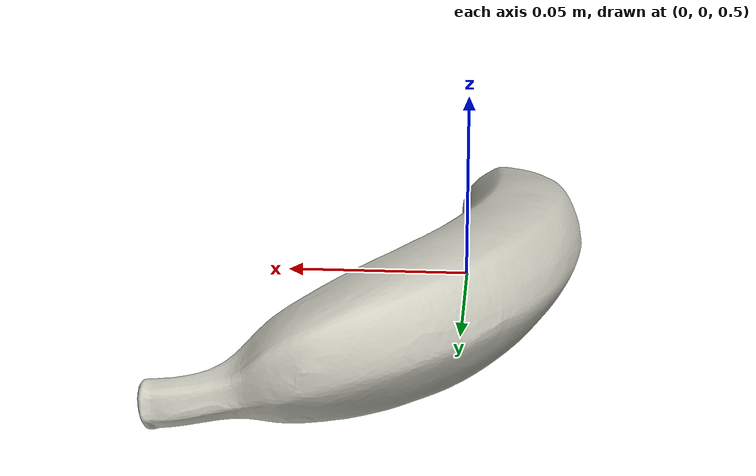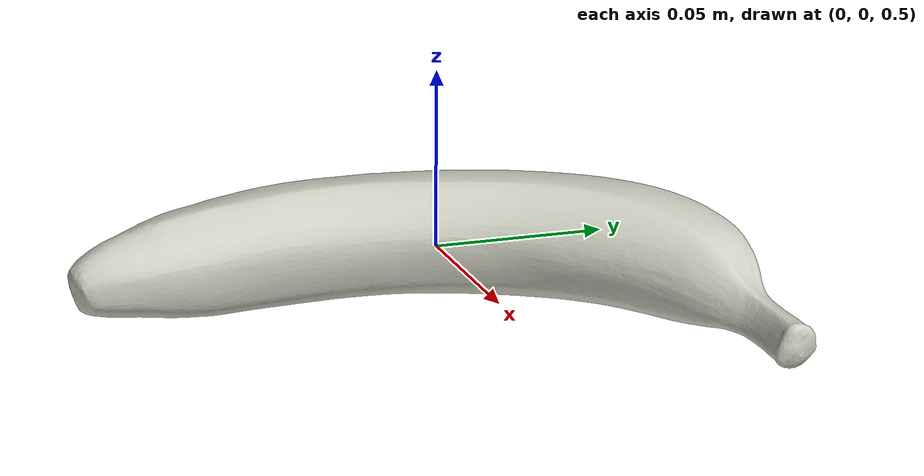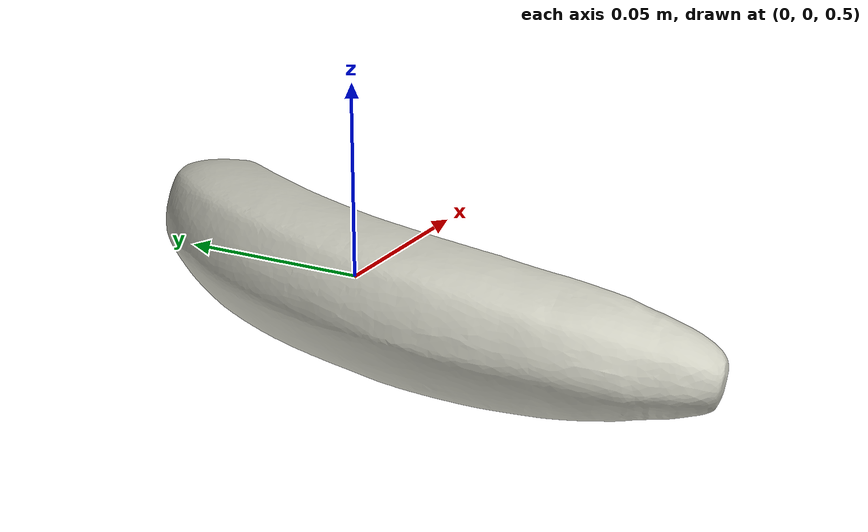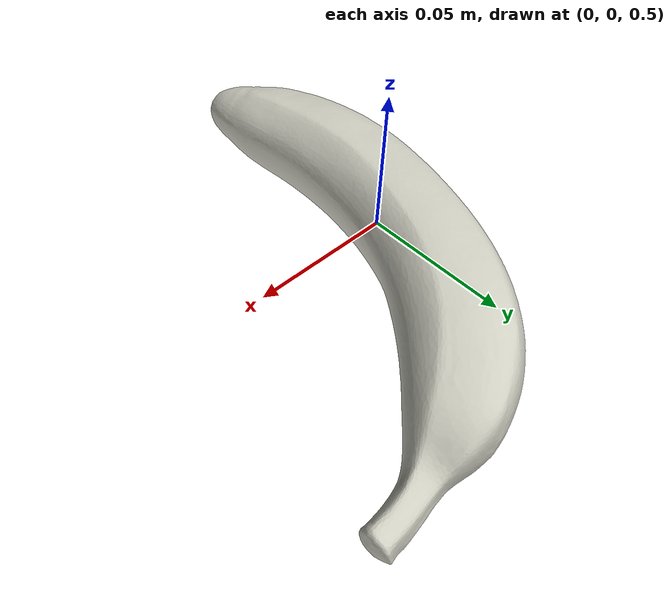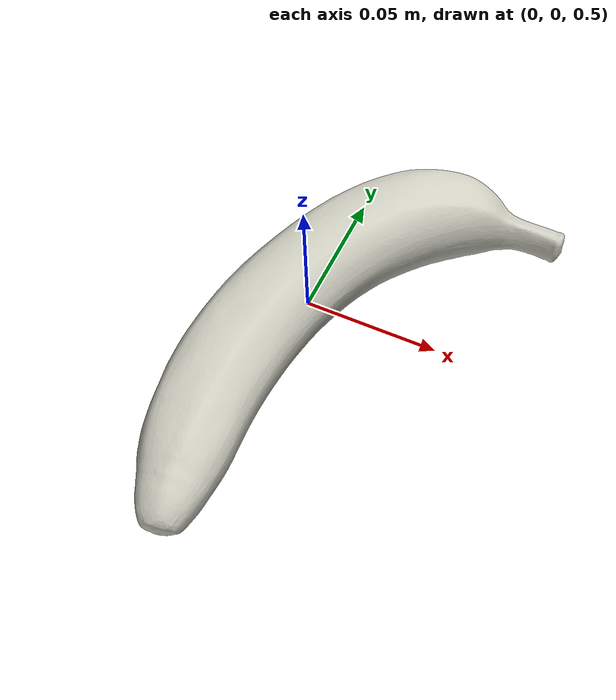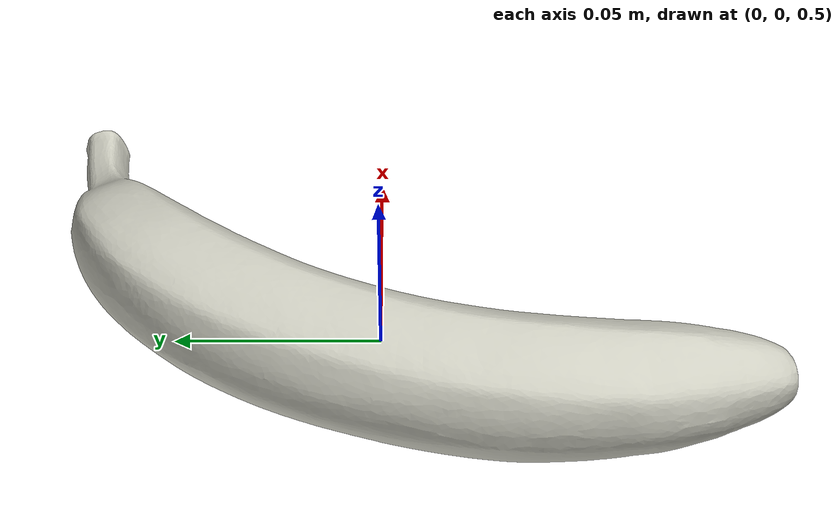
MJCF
<mujoco>
  <asset>
    <mesh name="011_banana_visual" file="objects/011_banana/visual.stl" />
    <mesh name="011_banana_col_00" file="objects/011_banana/collision/011_banana_00.stl" />
    <mesh name="011_banana_col_01" file="objects/011_banana/collision/011_banana_01.stl" />
    <mesh name="011_banana_col_02" file="objects/011_banana/collision/011_banana_02.stl" />
    <mesh name="011_banana_col_03" file="objects/011_banana/collision/011_banana_03.stl" />
    <mesh name="011_banana_col_04" file="objects/011_banana/collision/011_banana_04.stl" />
    <mesh name="011_banana_col_05" file="objects/011_banana/collision/011_banana_05.stl" />
    <mesh name="011_banana_col_06" file="objects/011_banana/collision/011_banana_06.stl" />
    <mesh name="011_banana_col_07" file="objects/011_banana/collision/011_banana_07.stl" />
    <mesh name="011_banana_col_08" file="objects/011_banana/collision/011_banana_08.stl" />
    <mesh name="011_banana_col_09" file="objects/011_banana/collision/011_banana_09.stl" />
    <mesh name="011_banana_col_10" file="objects/011_banana/collision/011_banana_10.stl" />
    <mesh name="011_banana_col_11" file="objects/011_banana/collision/011_banana_11.stl" />
    <mesh name="011_banana_col_12" file="objects/011_banana/collision/011_banana_12.stl" />
    <mesh name="011_banana_col_13" file="objects/011_banana/collision/011_banana_13.stl" />
    <mesh name="011_banana_col_14" file="objects/011_banana/collision/011_banana_14.stl" />
    <mesh name="011_banana_col_15" file="objects/011_banana/collision/011_banana_15.stl" />
    <mesh name="011_banana_col_16" file="objects/011_banana/collision/011_banana_16.stl" />
    <mesh name="011_banana_col_17" file="objects/011_banana/collision/011_banana_17.stl" />
    <mesh name="011_banana_col_18" file="objects/011_banana/collision/011_banana_18.stl" />
    <mesh name="011_banana_col_19" file="objects/011_banana/collision/011_banana_19.stl" />
    <mesh name="011_banana_col_20" file="objects/011_banana/collision/011_banana_20.stl" />
    <mesh name="011_banana_col_21" file="objects/011_banana/collision/011_banana_21.stl" />
    <mesh name="011_banana_col_22" file="objects/011_banana/collision/011_banana_22.stl" />
    <mesh name="011_banana_col_23" file="objects/011_banana/collision/011_banana_23.stl" />
    <mesh name="011_banana_col_24" file="objects/011_banana/collision/011_banana_24.stl" />
    <mesh name="011_banana_col_25" file="objects/011_banana/collision/011_banana_25.stl" />
    <mesh name="011_banana_col_26" file="objects/011_banana/collision/011_banana_26.stl" />
    <mesh name="011_banana_col_27" file="objects/011_banana/collision/011_banana_27.stl" />
    <mesh name="011_banana_col_28" file="objects/011_banana/collision/011_banana_28.stl" />
    <mesh name="011_banana_col_29" file="objects/011_banana/collision/011_banana_29.stl" />
    <mesh name="011_banana_col_30" file="objects/011_banana/collision/011_banana_30.stl" />
    <mesh name="011_banana_col_31" file="objects/011_banana/collision/011_banana_31.stl" />
  </asset>
  <worldbody>
    <body name="011_banana" pos="0 0 0.5">
      <freejoint name="011_banana_free" />
      <geom type="mesh" mesh="011_banana_visual" contype="0" conaffinity="0" group="2" rgba="0.8 0.8 0.75 1" />
      <geom type="mesh" mesh="011_banana_col_00" group="3" condim="4" friction="0.8 0.01 0.001" density="1000" solref="0.005 1" solimp="0.9 0.98 0.001" />
      <geom type="mesh" mesh="011_banana_col_01" group="3" condim="4" friction="0.8 0.01 0.001" density="1000" solref="0.005 1" solimp="0.9 0.98 0.001" />
      <geom type="mesh" mesh="011_banana_col_02" group="3" condim="4" friction="0.8 0.01 0.001" density="1000" solref="0.005 1" solimp="0.9 0.98 0.001" />
      <geom type="mesh" mesh="011_banana_col_03" group="3" condim="4" friction="0.8 0.01 0.001" density="1000" solref="0.005 1" solimp="0.9 0.98 0.001" />
      <geom type="mesh" mesh="011_banana_col_04" group="3" condim="4" friction="0.8 0.01 0.001" density="1000" solref="0.005 1" solimp="0.9 0.98 0.001" />
      <geom type="mesh" mesh="011_banana_col_05" group="3" condim="4" friction="0.8 0.01 0.001" density="1000" solref="0.005 1" solimp="0.9 0.98 0.001" />
      <geom type="mesh" mesh="011_banana_col_06" group="3" condim="4" friction="0.8 0.01 0.001" density="1000" solref="0.005 1" solimp="0.9 0.98 0.001" />
      <geom type="mesh" mesh="011_banana_col_07" group="3" condim="4" friction="0.8 0.01 0.001" density="1000" solref="0.005 1" solimp="0.9 0.98 0.001" />
      <geom type="mesh" mesh="011_banana_col_08" group="3" condim="4" friction="0.8 0.01 0.001" density="1000" solref="0.005 1" solimp="0.9 0.98 0.001" />
      <geom type="mesh" mesh="011_banana_col_09" group="3" condim="4" friction="0.8 0.01 0.001" density="1000" solref="0.005 1" solimp="0.9 0.98 0.001" />
      <geom type="mesh" mesh="011_banana_col_10" group="3" condim="4" friction="0.8 0.01 0.001" density="1000" solref="0.005 1" solimp="0.9 0.98 0.001" />
      <geom type="mesh" mesh="011_banana_col_11" group="3" condim="4" friction="0.8 0.01 0.001" density="1000" solref="0.005 1" solimp="0.9 0.98 0.001" />
      <geom type="mesh" mesh="011_banana_col_12" group="3" condim="4" friction="0.8 0.01 0.001" density="1000" solref="0.005 1" solimp="0.9 0.98 0.001" />
      <geom type="mesh" mesh="011_banana_col_13" group="3" condim="4" friction="0.8 0.01 0.001" density="1000" solref="0.005 1" solimp="0.9 0.98 0.001" />
      <geom type="mesh" mesh="011_banana_col_14" group="3" condim="4" friction="0.8 0.01 0.001" density="1000" solref="0.005 1" solimp="0.9 0.98 0.001" />
      <geom type="mesh" mesh="011_banana_col_15" group="3" condim="4" friction="0.8 0.01 0.001" density="1000" solref="0.005 1" solimp="0.9 0.98 0.001" />
      <geom type="mesh" mesh="011_banana_col_16" group="3" condim="4" friction="0.8 0.01 0.001" density="1000" solref="0.005 1" solimp="0.9 0.98 0.001" />
      <geom type="mesh" mesh="011_banana_col_17" group="3" condim="4" friction="0.8 0.01 0.001" density="1000" solref="0.005 1" solimp="0.9 0.98 0.001" />
      <geom type="mesh" mesh="011_banana_col_18" group="3" condim="4" friction="0.8 0.01 0.001" density="1000" solref="0.005 1" solimp="0.9 0.98 0.001" />
      <geom type="mesh" mesh="011_banana_col_19" group="3" condim="4" friction="0.8 0.01 0.001" density="1000" solref="0.005 1" solimp="0.9 0.98 0.001" />
      <geom type="mesh" mesh="011_banana_col_20" group="3" condim="4" friction="0.8 0.01 0.001" density="1000" solref="0.005 1" solimp="0.9 0.98 0.001" />
      <geom type="mesh" mesh="011_banana_col_21" group="3" condim="4" friction="0.8 0.01 0.001" density="1000" solref="0.005 1" solimp="0.9 0.98 0.001" />
      <geom type="mesh" mesh="011_banana_col_22" group="3" condim="4" friction="0.8 0.01 0.001" density="1000" solref="0.005 1" solimp="0.9 0.98 0.001" />
      <geom type="mesh" mesh="011_banana_col_23" group="3" condim="4" friction="0.8 0.01 0.001" density="1000" solref="0.005 1" solimp="0.9 0.98 0.001" />
      <geom type="mesh" mesh="011_banana_col_24" group="3" condim="4" friction="0.8 0.01 0.001" density="1000" solref="0.005 1" solimp="0.9 0.98 0.001" />
      <geom type="mesh" mesh="011_banana_col_25" group="3" condim="4" friction="0.8 0.01 0.001" density="1000" solref="0.005 1" solimp="0.9 0.98 0.001" />
      <geom type="mesh" mesh="011_banana_col_26" group="3" condim="4" friction="0.8 0.01 0.001" density="1000" solref="0.005 1" solimp="0.9 0.98 0.001" />
      <geom type="mesh" mesh="011_banana_col_27" group="3" condim="4" friction="0.8 0.01 0.001" density="1000" solref="0.005 1" solimp="0.9 0.98 0.001" />
      <geom type="mesh" mesh="011_banana_col_28" group="3" condim="4" friction="0.8 0.01 0.001" density="1000" solref="0.005 1" solimp="0.9 0.98 0.001" />
      <geom type="mesh" mesh="011_banana_col_29" group="3" condim="4" friction="0.8 0.01 0.001" density="1000" solref="0.005 1" solimp="0.9 0.98 0.001" />
      <geom type="mesh" mesh="011_banana_col_30" group="3" condim="4" friction="0.8 0.01 0.001" density="1000" solref="0.005 1" solimp="0.9 0.98 0.001" />
      <geom type="mesh" mesh="011_banana_col_31" group="3" condim="4" friction="0.8 0.01 0.001" density="1000" solref="0.005 1" solimp="0.9 0.98 0.001" />
    </body>
  </worldbody>
</mujoco>
